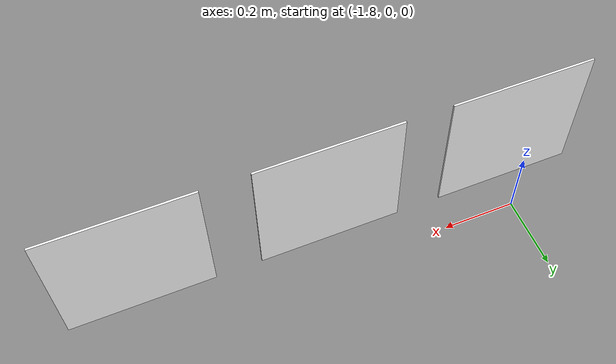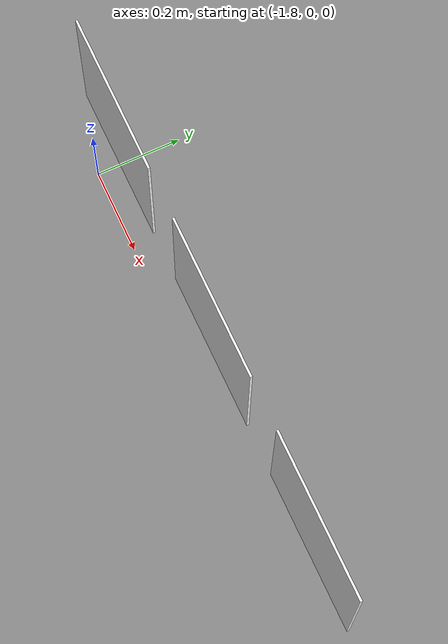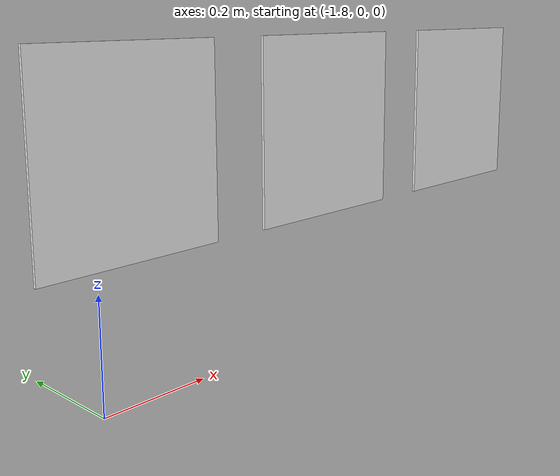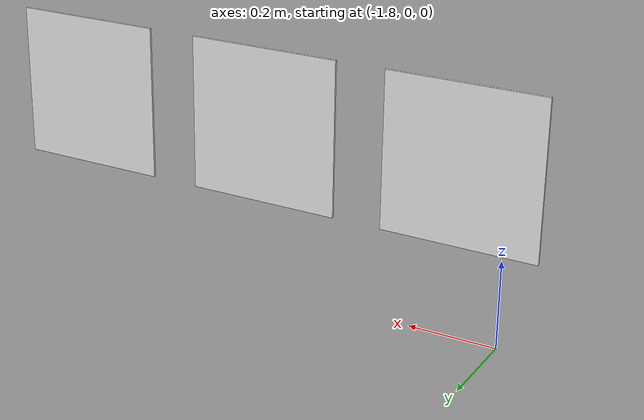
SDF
<?xml version='1.0'?>
<sdf version='1.8'>
  <model name='lunabotics_fiducials'>
    <pose>0 0 0 0 0 0</pose>
    <static>true</static>

    <link name='marker_67'>
      <!-- pitch then yaw turns the plate's face to +Y, i.e. north into the arena -->
      <pose>-1.7125 0.028 0.4 0 1.5708 1.5708</pose>
      <collision name='marker_67_collision'>
        <geometry><box><size>0.35 0.35 0.005</size></box></geometry>
      </collision>
      <visual name='marker_67_visual'>
        <geometry><box><size>0.35 0.35 0.005</size></box></geometry>
        <material>
          <pbr><metal><albedo_map>textures/aruco67.png</albedo_map></metal></pbr>
          <ambient>1 1 1 1</ambient>
          <diffuse>1 1 1 1</diffuse>
          <specular>0.05 0.05 0.05 1</specular>
          <emissive>0 0 0 1</emissive>
        </material>
      </visual>
    </link>

    <link name='marker_68'>
      <!-- pitch then yaw turns the plate's face to +Y, i.e. north into the arena -->
      <pose>-1.25 0.028 0.4 0 1.5708 1.5708</pose>
      <collision name='marker_68_collision'>
        <geometry><box><size>0.35 0.35 0.005</size></box></geometry>
      </collision>
      <visual name='marker_68_visual'>
        <geometry><box><size>0.35 0.35 0.005</size></box></geometry>
        <material>
          <pbr><metal><albedo_map>textures/aruco68.png</albedo_map></metal></pbr>
          <ambient>1 1 1 1</ambient>
          <diffuse>1 1 1 1</diffuse>
          <specular>0.05 0.05 0.05 1</specular>
          <emissive>0 0 0 1</emissive>
        </material>
      </visual>
    </link>

    <link name='marker_69'>
      <!-- pitch then yaw turns the plate's face to +Y, i.e. north into the arena -->
      <pose>-0.7875 0.028 0.4 0 1.5708 1.5708</pose>
      <collision name='marker_69_collision'>
        <geometry><box><size>0.35 0.35 0.005</size></box></geometry>
      </collision>
      <visual name='marker_69_visual'>
        <geometry><box><size>0.35 0.35 0.005</size></box></geometry>
        <material>
          <pbr><metal><albedo_map>textures/aruco69.png</albedo_map></metal></pbr>
          <ambient>1 1 1 1</ambient>
          <diffuse>1 1 1 1</diffuse>
          <specular>0.05 0.05 0.05 1</specular>
          <emissive>0 0 0 1</emissive>
        </material>
      </visual>
    </link>

  </model>
</sdf>
